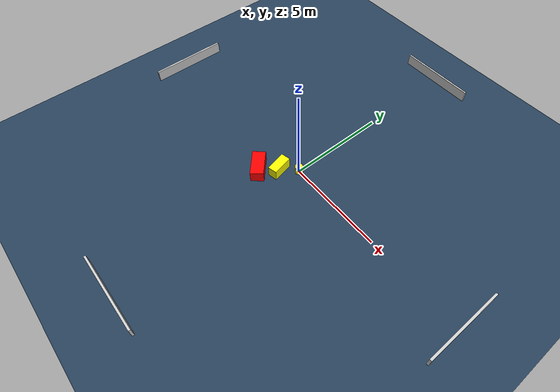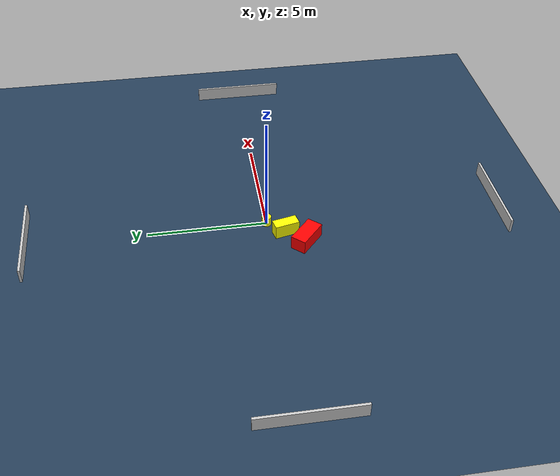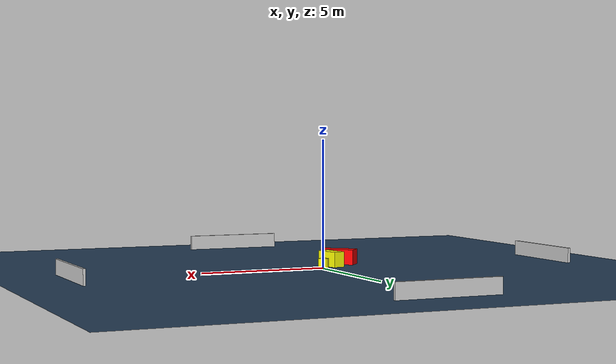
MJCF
<?xml version="1.0" ?>
<mujoco model="generated_environment">
  <option timestep="0.01" integrator="RK4" cone="elliptic"/>
  <default>
    <geom density="1"/>
  </default>
  <asset>
    <texture builtin="gradient" height="3072" name="skybox" rgb1="0.3 0.5 0.7" rgb2="0 0 0" type="skybox" width="512"/>
    <texture builtin="checker" height="300" name="groundplane" rgb1="0.2 0.3 0.4" rgb2="0.1 0.2 0.3" type="2d" width="300"/>
    <material name="groundplane" reflectance="0.2" texrepeat="5 5" texture="groundplane"/>
  </asset>
  <worldbody>
    <light dir="0 0 -1" directional="true" pos="0 0 1.5"/>
    <geom condim="3" friction="0.5 0.005 0.001" material="groundplane" name="floor" pos="0 0 0" size="0 0 0.05" type="plane"/>
    <body name="walls">
      <geom name="wall_1" condim="4" pos="-10.0 0.0 0.3" rgba="0.800000011920929 0.800000011920929 0.800000011920929 1.0" size="0.05 2.0 0.3" type="box"/>
      <geom name="wall_2" condim="4" pos="10.0 0.0 0.3" rgba="0.800000011920929 0.800000011920929 0.800000011920929 1.0" size="0.05 2.0 0.3" type="box"/>
      <geom name="wall_3" condim="4" pos="0.0 -10.0 0.3" rgba="0.800000011920929 0.800000011920929 0.800000011920929 1.0" size="2.0 0.05 0.3" type="box"/>
      <geom name="wall_4" condim="4" pos="0.0 10.0 0.3" rgba="0.800000011920929 0.800000011920929 0.800000011920929 1.0" size="2.0 0.05 0.3" type="box"/>
    </body>
    <body name="robot">
      <joint name="joint_x" type="slide" pos="0 0 0" axis="1 0 0"/>
      <joint name="joint_y" type="slide" pos="0 0 0" axis="0 1 0"/>
      <geom name="robot" type="cylinder" pos="0.0 0.0 0.2" size="0.2 0.2 0.0" mass="5.0" friction="1.0 0.005 0.0001" condim="4" rgba="1.0 1.0 0.0 1.0"/>
    </body>
    <body name="obstacle_1_movable">
      <geom name="obstacle_1_movable" condim="4" pos="-0.6565516288762682 -0.7037577160991974 0.3" euler="0 0 102.53904301289981" friction="0.0 0.005 0.001" rgba="1.0 1.0 0.0 1.0" size="0.5199550864322613 0.23451102984283823 0.3" type="box" mass="0.1"/>
      <joint type="free"/>
    </body>
    <body name="obstacle_2_static">
      <geom name="obstacle_2_static" condim="4" pos="-1.341377389756702 -1.460419829428741 0.3" euler="0 0 318.2218700063238" friction="0.0 0.005 0.001" rgba="1.0 0.0 0.0 1.0" size="0.6681165866801415 0.3272479310696824 0.3" type="box"/>
    </body>
  </worldbody>
  <actuator>
    <motor name="actuator_x" joint="joint_x" gear="1" ctrlrange="-1 1"/>
    <motor name="actuator_y" joint="joint_y" gear="1" ctrlrange="-1 1"/>
  </actuator>
</mujoco>
